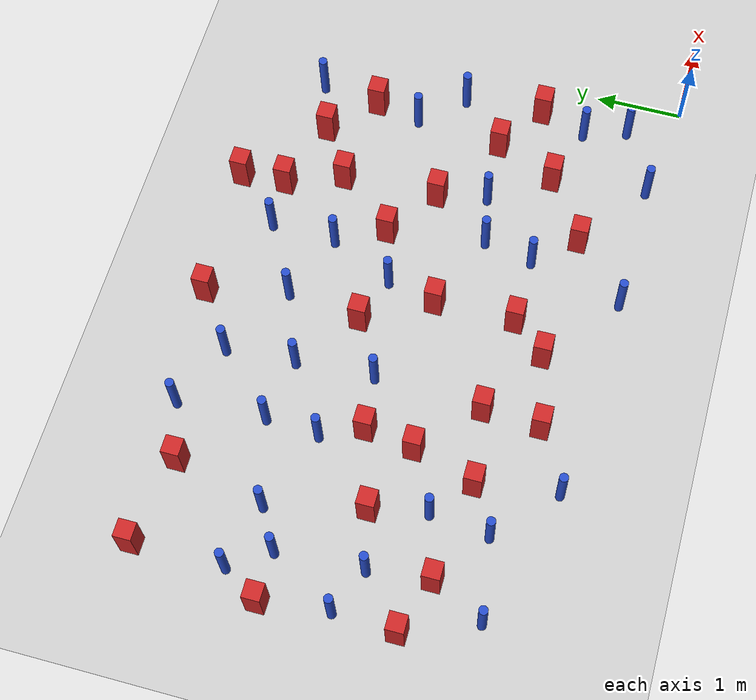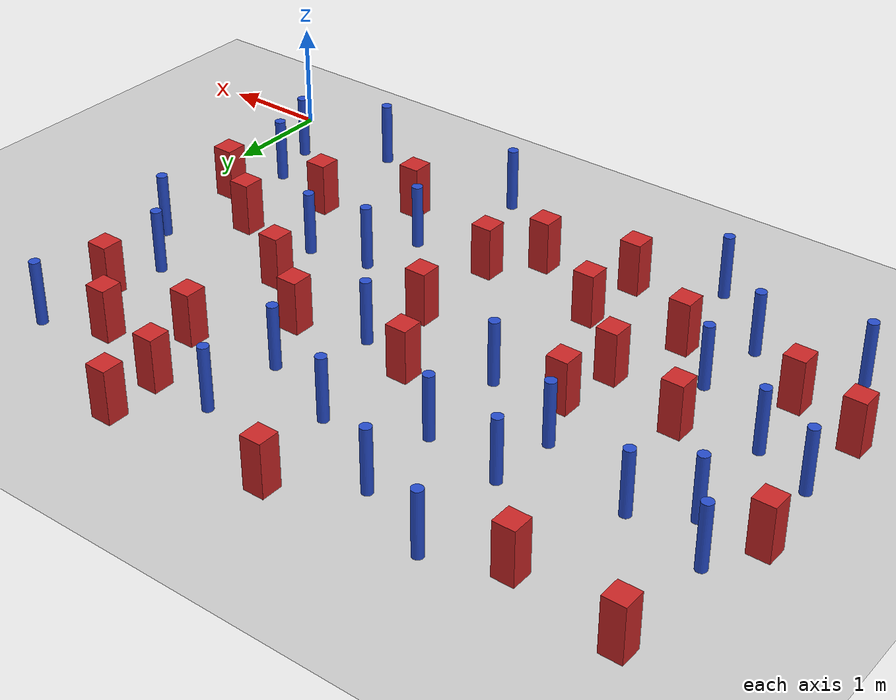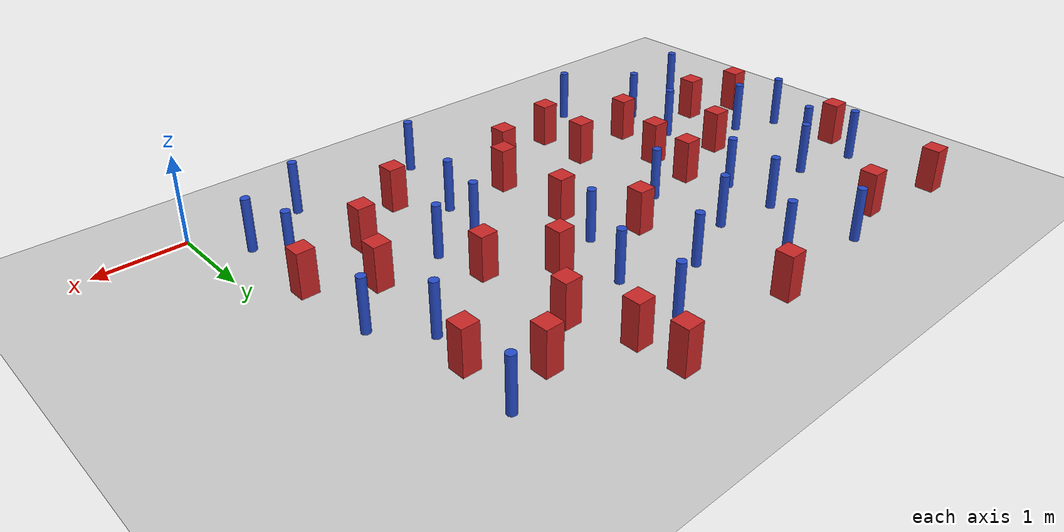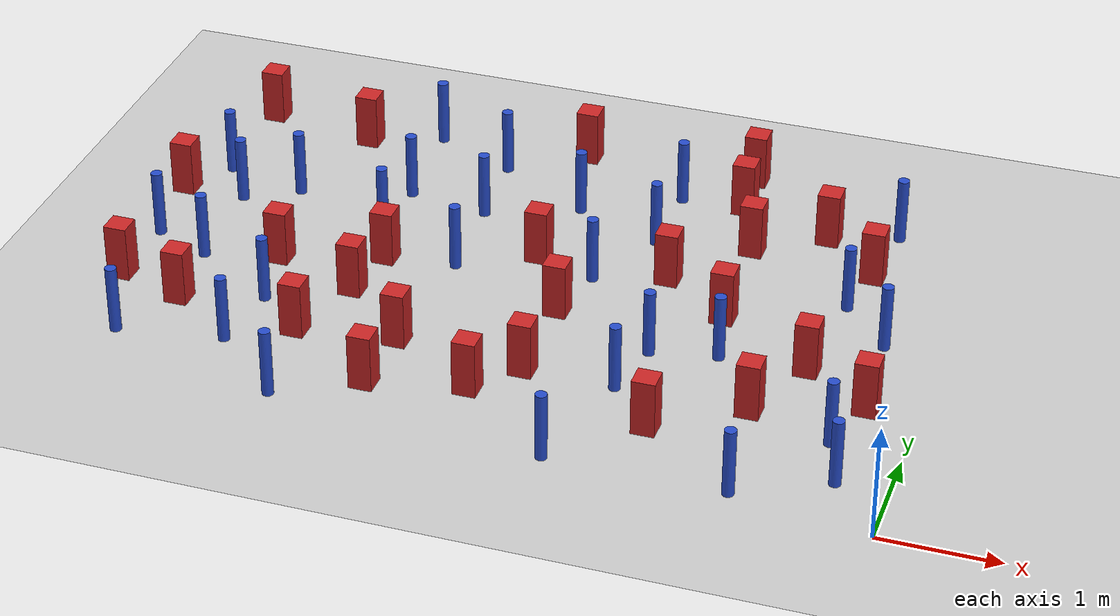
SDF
<sdf version="1.6">
 <world name="default">
  <model name="ground_plane">
   <static>1</static>
   <link name="link">
    <collision name="collision">
     <geometry><plane><normal>0 0 1</normal><size>100 100</size></plane></geometry>
     <surface><friction><ode><mu>100</mu><mu2>50</mu2></ode></friction></surface>
    </collision>
    <visual name="visual">
     <cast_shadows>0</cast_shadows>
     <geometry><plane><normal>0 0 1</normal><size>100 100</size></plane></geometry>
     <material>
      <ambient>1.0 1.0 1.0 1.0</ambient>
      <diffuse>0.8 0.8 0.8 1.0</diffuse>
      <specular>0.01 0.01 0.01 1.000000</specular>
     </material>
    </visual>
   </link>
  </model>
  <model name="square_post_obstacle0">
   <static>true</static>
   <pose>-3.20781454665 2.18599939971 8.22691968438e-08 7.2212513382e-06 -7.54495500217e-07 2.29674213826e-05</pose>
   <link name="link">
    <pose>0 0 0.25 0 -0 0</pose>
    <inertial>
     <mass>100</mass>
     <inertia>
      <ixx>0.166667</ixx>
      <ixy>0</ixy>
      <ixz>0</ixz>
      <iyy>0.166667</iyy>
      <iyz>0</iyz>
      <izz>0.166667</izz>
     </inertia>
    </inertial>
    <collision name="collision"><geometry><box><size>.2 .2 .5</size></box></geometry></collision>
    <visual name="visual">
     <geometry><box><size>.2 .2 .5</size></box></geometry>
     <material>
      <script><name>Gazebo/Red</name><uri>file://media/materials/scripts/gazebo.material</uri></script>
     </material>
    </visual>
   </link>
  </model>
  <model name="pole_obstacle2">
   <static>true</static>
   <pose>-2.73292203256 3.49728590901 2.88873142074e-08 -9.90536690232e-09 4.6021994898e-07 -1.20965994968e-07</pose>
   <link name="link">
    <pose>0 0 0.3 0 -0 0</pose>
    <inertial>
     <mass>1</mass>
     <inertia><ixx>0.145833</ixx><ixy>0</ixy><ixz>0</ixz><iyy>0.145833</iyy><iyz>0</iyz><izz>0.125</izz></inertia>
    </inertial>
    <collision name="collision">
     <geometry><cylinder><radius>0.05</radius><length>.6</length></cylinder></geometry>
    </collision>
    <visual name="visual">
     <geometry><cylinder><radius>0.05</radius><length>.6</length></cylinder></geometry>
     <material>
      <script><name>Gazebo/Blue</name><uri>file://media/materials/scripts/gazebo.material</uri></script>
     </material>
    </visual>
   </link>
  </model>
  <model name="pole_obstacle14">
   <static>true</static>
   <pose>-2.70680773216 4.25169056416 2.88873142074e-08 -9.90536689859e-09 4.60219948989e-07 -1.20965994961e-07</pose>
   <link name="link">
    <pose>0 0 0.3 0 -0 0</pose>
    <inertial>
     <mass>1</mass>
     <inertia><ixx>0.145833</ixx><ixy>0</ixy><ixz>0</ixz><iyy>0.145833</iyy><iyz>0</iyz><izz>0.125</izz></inertia>
    </inertial>
    <collision name="collision">
     <geometry><cylinder><radius>0.05</radius><length>.6</length></cylinder></geometry>
    </collision>
    <visual name="visual">
     <geometry><cylinder><radius>0.05</radius><length>.6</length></cylinder></geometry>
     <material>
      <script><name>Gazebo/Blue</name><uri>file://media/materials/scripts/gazebo.material</uri></script>
     </material>
    </visual>
   </link>
  </model>
  <model name="pole_obstacle15">
   <static>true</static>
   <pose>-0.483504385526 2.51753381008 2.88873142074e-08 -9.90536689335e-09 4.60219949001e-07 -1.20965994953e-07</pose>
   <link name="link">
    <pose>0 0 0.3 0 -0 0</pose>
    <inertial>
     <mass>1</mass>
     <inertia><ixx>0.145833</ixx><ixy>0</ixy><ixz>0</ixz><iyy>0.145833</iyy><iyz>0</iyz><izz>0.125</izz></inertia>
    </inertial>
    <collision name="collision">
     <geometry><cylinder><radius>0.05</radius><length>.6</length></cylinder></geometry>
    </collision>
    <visual name="visual">
     <geometry><cylinder><radius>0.05</radius><length>.6</length></cylinder></geometry>
     <material>
      <script><name>Gazebo/Blue</name><uri>file://media/materials/scripts/gazebo.material</uri></script>
     </material>
    </visual>
   </link>
  </model>
  <model name="pole_obstacle26">
   <static>true</static>
   <pose>-5.02933174492 3.59131452795 2.88873142074e-08 -9.90536690245e-09 4.6021994898e-07 -1.20965994966e-07</pose>
   <link name="link">
    <pose>0 0 0.3 0 -0 0</pose>
    <inertial>
     <mass>1</mass>
     <inertia><ixx>0.145833</ixx><ixy>0</ixy><ixz>0</ixz><iyy>0.145833</iyy><iyz>0</iyz><izz>0.125</izz></inertia>
    </inertial>
    <collision name="collision">
     <geometry><cylinder><radius>0.05</radius><length>.6</length></cylinder></geometry>
    </collision>
    <visual name="visual">
     <geometry><cylinder><radius>0.05</radius><length>.6</length></cylinder></geometry>
     <material>
      <script><name>Gazebo/Blue</name><uri>file://media/materials/scripts/gazebo.material</uri></script>
     </material>
    </visual>
   </link>
  </model>
  <model name="pole_obstacle29">
   <static>true</static>
   <pose>-5.61676912928 1.59975428402 2.88873142074e-08 -9.90536689445e-09 4.60219948999e-07 -1.20965994956e-07</pose>
   <link name="link">
    <pose>0 0 0.3 0 -0 0</pose>
    <inertial>
     <mass>1</mass>
     <inertia><ixx>0.145833</ixx><ixy>0</ixy><ixz>0</ixz><iyy>0.145833</iyy><iyz>0</iyz><izz>0.125</izz></inertia>
    </inertial>
    <collision name="collision">
     <geometry><cylinder><radius>0.05</radius><length>.6</length></cylinder></geometry>
    </collision>
    <visual name="visual">
     <geometry><cylinder><radius>0.05</radius><length>.6</length></cylinder></geometry>
     <material>
      <script><name>Gazebo/Blue</name><uri>file://media/materials/scripts/gazebo.material</uri></script>
     </material>
    </visual>
   </link>
  </model>
  <model name="pole_obstacle34">
   <static>true</static>
   <pose>-2.30116864012 1.83031347452 2.88873142074e-08 -9.90536689395e-09 4.60219949e-07 -1.20965994953e-07</pose>
   <link name="link">
    <pose>0 0 0.3 0 -0 0</pose>
    <inertial>
     <mass>1</mass>
     <inertia><ixx>0.145833</ixx><ixy>0</ixy><ixz>0</ixz><iyy>0.145833</iyy><iyz>0</iyz><izz>0.125</izz></inertia>
    </inertial>
    <collision name="collision">
     <geometry><cylinder><radius>0.05</radius><length>.6</length></cylinder></geometry>
    </collision>
    <visual name="visual">
     <geometry><cylinder><radius>0.05</radius><length>.6</length></cylinder></geometry>
     <material>
      <script><name>Gazebo/Blue</name><uri>file://media/materials/scripts/gazebo.material</uri></script>
     </material>
    </visual>
   </link>
  </model>
  <model name="pole_obstacle37">
   <static>true</static>
   <pose>-2.68491432938 0.179552298153 2.88873142074e-08 -9.90536689209e-09 4.60219949004e-07 -1.20965994952e-07</pose>
   <link name="link">
    <pose>0 0 0.3 0 -0 0</pose>
    <inertial>
     <mass>1</mass>
     <inertia><ixx>0.145833</ixx><ixy>0</ixy><ixz>0</ixz><iyy>0.145833</iyy><iyz>0</iyz><izz>0.125</izz></inertia>
    </inertial>
    <collision name="collision">
     <geometry><cylinder><radius>0.05</radius><length>.6</length></cylinder></geometry>
    </collision>
    <visual name="visual">
     <geometry><cylinder><radius>0.05</radius><length>.6</length></cylinder></geometry>
     <material>
      <script><name>Gazebo/Blue</name><uri>file://media/materials/scripts/gazebo.material</uri></script>
     </material>
    </visual>
   </link>
  </model>
  <model name="pole_obstacle57">
   <static>true</static>
   <pose>-5.0923143408 4.59737089145 2.88873142074e-08 -9.90536690842e-09 4.60219948965e-07 -1.20965994976e-07</pose>
   <link name="link">
    <pose>0 0 0.3 0 -0 0</pose>
    <inertial>
     <mass>1</mass>
     <inertia><ixx>0.145833</ixx><ixy>0</ixy><ixz>0</ixz><iyy>0.145833</iyy><iyz>0</iyz><izz>0.125</izz></inertia>
    </inertial>
    <collision name="collision">
     <geometry><cylinder><radius>0.05</radius><length>.6</length></cylinder></geometry>
    </collision>
    <visual name="visual">
     <geometry><cylinder><radius>0.05</radius><length>.6</length></cylinder></geometry>
     <material>
      <script><name>Gazebo/Blue</name><uri>file://media/materials/scripts/gazebo.material</uri></script>
     </material>
    </visual>
   </link>
  </model>
  <model name="pole_obstacle60">
   <static>true</static>
   <pose>-4.30689478255 3.48012031922 2.88873142074e-08 -9.90536690245e-09 4.6021994898e-07 -1.20965994966e-07</pose>
   <link name="link">
    <pose>0 0 0.3 0 -0 0</pose>
    <inertial>
     <mass>1</mass>
     <inertia><ixx>0.145833</ixx><ixy>0</ixy><ixz>0</ixz><iyy>0.145833</iyy><iyz>0</iyz><izz>0.125</izz></inertia>
    </inertial>
    <collision name="collision">
     <geometry><cylinder><radius>0.05</radius><length>.6</length></cylinder></geometry>
    </collision>
    <visual name="visual">
     <geometry><cylinder><radius>0.05</radius><length>.6</length></cylinder></geometry>
     <material>
      <script><name>Gazebo/Blue</name><uri>file://media/materials/scripts/gazebo.material</uri></script>
     </material>
    </visual>
   </link>
  </model>
  <model name="pole_obstacle68">
   <static>true</static>
   <pose>-4.25882620651 2.58898249832 2.88873142074e-08 -9.90536690245e-09 4.6021994898e-07 -1.20965994966e-07</pose>
   <link name="link">
    <pose>0 0 0.3 0 -0 0</pose>
    <inertial>
     <mass>1</mass>
     <inertia><ixx>0.145833</ixx><ixy>0</ixy><ixz>0</ixz><iyy>0.145833</iyy><iyz>0</iyz><izz>0.125</izz></inertia>
    </inertial>
    <collision name="collision">
     <geometry><cylinder><radius>0.05</radius><length>.6</length></cylinder></geometry>
    </collision>
    <visual name="visual">
     <geometry><cylinder><radius>0.05</radius><length>.6</length></cylinder></geometry>
     <material>
      <script><name>Gazebo/Blue</name><uri>file://media/materials/scripts/gazebo.material</uri></script>
     </material>
    </visual>
   </link>
  </model>
  <model name="square_post_obstacle51">
   <static>true</static>
   <pose>-4.32878848801 1.3493182708 8.22691968438e-08 7.2212513382e-06 -7.54495500217e-07 2.29674213826e-05</pose>
   <link name="link">
    <pose>0 0 0.25 0 -0 0</pose>
    <inertial>
     <mass>100</mass>
     <inertia>
      <ixx>0.166667</ixx>
      <ixy>0</ixy>
      <ixz>0</ixz>
      <iyy>0.166667</iyy>
      <iyz>0</iyz>
      <izz>0.166667</izz>
     </inertia>
    </inertial>
    <collision name="collision"><geometry><box><size>.2 .2 .5</size></box></geometry></collision>
    <visual name="visual">
     <geometry><box><size>.2 .2 .5</size></box></geometry>
     <material>
      <script><name>Gazebo/Red</name><uri>file://media/materials/scripts/gazebo.material</uri></script>
     </material>
    </visual>
   </link>
  </model>
  <model name="square_post_obstacle54">
   <static>true</static>
   <pose>-0.80601503607 3.52082196439 8.22691968438e-08 7.2212513382e-06 -7.54495500217e-07 2.29674213826e-05</pose>
   <link name="link">
    <pose>0 0 0.25 0 -0 0</pose>
    <inertial>
     <mass>100</mass>
     <inertia>
      <ixx>0.166667</ixx>
      <ixy>0</ixy>
      <ixz>0</ixz>
      <iyy>0.166667</iyy>
      <iyz>0</iyz>
      <izz>0.166667</izz>
     </inertia>
    </inertial>
    <collision name="collision"><geometry><box><size>.2 .2 .5</size></box></geometry></collision>
    <visual name="visual">
     <geometry><box><size>.2 .2 .5</size></box></geometry>
     <material>
      <script><name>Gazebo/Red</name><uri>file://media/materials/scripts/gazebo.material</uri></script>
     </material>
    </visual>
   </link>
  </model>
  <model name="square_post_obstacle58">
   <static>true</static>
   <pose>-5.72409586233 4.36190401999 8.22691968438e-08 7.2212513382e-06 -7.54495500217e-07 2.29674213826e-05</pose>
   <link name="link">
    <pose>0 0 0.25 0 -0 0</pose>
    <inertial>
     <mass>100</mass>
     <inertia>
      <ixx>0.166667</ixx>
      <ixy>0</ixy>
      <ixz>0</ixz>
      <iyy>0.166667</iyy>
      <iyz>0</iyz>
      <izz>0.166667</izz>
     </inertia>
    </inertial>
    <collision name="collision"><geometry><box><size>.2 .2 .5</size></box></geometry></collision>
    <visual name="visual">
     <geometry><box><size>.2 .2 .5</size></box></geometry>
     <material>
      <script><name>Gazebo/Red</name><uri>file://media/materials/scripts/gazebo.material</uri></script>
     </material>
    </visual>
   </link>
  </model>
  <model name="pole_obstacle70">
   <static>true</static>
   <pose>-6.72820413691 3.49559906012 2.88873142074e-08 -9.90536690245e-09 4.6021994898e-07 -1.20965994966e-07</pose>
   <link name="link">
    <pose>0 0 0.3 0 -0 0</pose>
    <inertial>
     <mass>1</mass>
     <inertia><ixx>0.145833</ixx><ixy>0</ixy><ixz>0</ixz><iyy>0.145833</iyy><iyz>0</iyz><izz>0.125</izz></inertia>
    </inertial>
    <collision name="collision">
     <geometry><cylinder><radius>0.05</radius><length>.6</length></cylinder></geometry>
    </collision>
    <visual name="visual">
     <geometry><cylinder><radius>0.05</radius><length>.6</length></cylinder></geometry>
     <material>
      <script><name>Gazebo/Blue</name><uri>file://media/materials/scripts/gazebo.material</uri></script>
     </material>
    </visual>
   </link>
  </model>
  <model name="square_post_obstacle59">
   <static>true</static>
   <pose>-4.36329872787 0.689476009944 8.22691968438e-08 7.2212513382e-06 -7.54495500217e-07 2.29674213826e-05</pose>
   <link name="link">
    <pose>0 0 0.25 0 -0 0</pose>
    <inertial>
     <mass>100</mass>
     <inertia>
      <ixx>0.166667</ixx>
      <ixy>0</ixy>
      <ixz>0</ixz>
      <iyy>0.166667</iyy>
      <iyz>0</iyz>
      <izz>0.166667</izz>
     </inertia>
    </inertial>
    <collision name="collision"><geometry><box><size>.2 .2 .5</size></box></geometry></collision>
    <visual name="visual">
     <geometry><box><size>.2 .2 .5</size></box></geometry>
     <material>
      <script><name>Gazebo/Red</name><uri>file://media/materials/scripts/gazebo.material</uri></script>
     </material>
    </visual>
   </link>
  </model>
  <model name="square_post_obstacle60">
   <static>true</static>
   <pose>-6.30531242567 1.37823573776 8.22691968438e-08 7.2212513382e-06 -7.54495500217e-07 2.29674213826e-05</pose>
   <link name="link">
    <pose>0 0 0.25 0 -0 0</pose>
    <inertial>
     <mass>100</mass>
     <inertia>
      <ixx>0.166667</ixx>
      <ixy>0</ixy>
      <ixz>0</ixz>
      <iyy>0.166667</iyy>
      <iyz>0</iyz>
      <izz>0.166667</izz>
     </inertia>
    </inertial>
    <collision name="collision"><geometry><box><size>.2 .2 .5</size></box></geometry></collision>
    <visual name="visual">
     <geometry><box><size>.2 .2 .5</size></box></geometry>
     <material>
      <script><name>Gazebo/Red</name><uri>file://media/materials/scripts/gazebo.material</uri></script>
     </material>
    </visual>
   </link>
  </model>
  <model name="pole_obstacle72">
   <static>true</static>
   <pose>-1.17680404459 0.184795496325 2.88873142074e-08 -9.90536689986e-09 4.60219948986e-07 -1.20965994962e-07</pose>
   <link name="link">
    <pose>0 0 0.3 0 -0 0</pose>
    <inertial>
     <mass>1</mass>
     <inertia><ixx>0.145833</ixx><ixy>0</ixy><ixz>0</ixz><iyy>0.145833</iyy><iyz>0</iyz><izz>0.125</izz></inertia>
    </inertial>
    <collision name="collision">
     <geometry><cylinder><radius>0.05</radius><length>.6</length></cylinder></geometry>
    </collision>
    <visual name="visual">
     <geometry><cylinder><radius>0.05</radius><length>.6</length></cylinder></geometry>
     <material>
      <script><name>Gazebo/Blue</name><uri>file://media/materials/scripts/gazebo.material</uri></script>
     </material>
    </visual>
   </link>
  </model>
  <model name="pole_obstacle78">
   <static>true</static>
   <pose>-3.51299128004 3.80037510205 2.88873142074e-08 -9.90536690232e-09 4.6021994898e-07 -1.20965994968e-07</pose>
   <link name="link">
    <pose>0 0 0.3 0 -0 0</pose>
    <inertial>
     <mass>1</mass>
     <inertia><ixx>0.145833</ixx><ixy>0</ixy><ixz>0</ixz><iyy>0.145833</iyy><iyz>0</iyz><izz>0.125</izz></inertia>
    </inertial>
    <collision name="collision">
     <geometry><cylinder><radius>0.05</radius><length>.6</length></cylinder></geometry>
    </collision>
    <visual name="visual">
     <geometry><cylinder><radius>0.05</radius><length>.6</length></cylinder></geometry>
     <material>
      <script><name>Gazebo/Blue</name><uri>file://media/materials/scripts/gazebo.material</uri></script>
     </material>
    </visual>
   </link>
  </model>
  <model name="square_post_obstacle73">
   <static>true</static>
   <pose>-3.5390618023 0.868748552133 8.22691968438e-08 7.2212513382e-06 -7.54495500217e-07 2.29674213826e-05</pose>
   <link name="link">
    <pose>0 0 0.25 0 -0 0</pose>
    <inertial>
     <mass>100</mass>
     <inertia>
      <ixx>0.166667</ixx>
      <ixy>0</ixy>
      <ixz>0</ixz>
      <iyy>0.166667</iyy>
      <iyz>0</iyz>
      <izz>0.166667</izz>
     </inertia>
    </inertial>
    <collision name="collision"><geometry><box><size>.2 .2 .5</size></box></geometry></collision>
    <visual name="visual">
     <geometry><box><size>.2 .2 .5</size></box></geometry>
     <material>
      <script><name>Gazebo/Red</name><uri>file://media/materials/scripts/gazebo.material</uri></script>
     </material>
    </visual>
   </link>
  </model>
  <model name="square_post_obstacle75">
   <static>true</static>
   <pose>-0.421297651456 1.59461641238 8.22691968438e-08 7.2212513382e-06 -7.54495500217e-07 2.29674213826e-05</pose>
   <link name="link">
    <pose>0 0 0.25 0 -0 0</pose>
    <inertial>
     <mass>100</mass>
     <inertia>
      <ixx>0.166667</ixx>
      <ixy>0</ixy>
      <ixz>0</ixz>
      <iyy>0.166667</iyy>
      <iyz>0</iyz>
      <izz>0.166667</izz>
     </inertia>
    </inertial>
    <collision name="collision"><geometry><box><size>.2 .2 .5</size></box></geometry></collision>
    <visual name="visual">
     <geometry><box><size>.2 .2 .5</size></box></geometry>
     <material>
      <script><name>Gazebo/Red</name><uri>file://media/materials/scripts/gazebo.material</uri></script>
     </material>
    </visual>
   </link>
  </model>
  <model name="pole_obstacle98">
   <static>true</static>
   <pose>-6.43764757645 3.0581776882 2.88873142074e-08 -9.90536690245e-09 4.6021994898e-07 -1.20965994966e-07</pose>
   <link name="link">
    <pose>0 0 0.3 0 -0 0</pose>
    <inertial>
     <mass>1</mass>
     <inertia><ixx>0.145833</ixx><ixy>0</ixy><ixz>0</ixz><iyy>0.145833</iyy><iyz>0</iyz><izz>0.125</izz></inertia>
    </inertial>
    <collision name="collision">
     <geometry><cylinder><radius>0.05</radius><length>.6</length></cylinder></geometry>
    </collision>
    <visual name="visual">
     <geometry><cylinder><radius>0.05</radius><length>.6</length></cylinder></geometry>
     <material>
      <script><name>Gazebo/Blue</name><uri>file://media/materials/scripts/gazebo.material</uri></script>
     </material>
    </visual>
   </link>
  </model>
  <model name="pole_obstacle100">
   <static>true</static>
   <pose>-0.907342043116 3.00085684457 2.88873142074e-08 -9.90536689636e-09 4.60219948994e-07 -1.20965994958e-07</pose>
   <link name="link">
    <pose>0 0 0.3 0 -0 0</pose>
    <inertial>
     <mass>1</mass>
     <inertia><ixx>0.145833</ixx><ixy>0</ixy><ixz>0</ixz><iyy>0.145833</iyy><iyz>0</iyz><izz>0.125</izz></inertia>
    </inertial>
    <collision name="collision">
     <geometry><cylinder><radius>0.05</radius><length>.6</length></cylinder></geometry>
    </collision>
    <visual name="visual">
     <geometry><cylinder><radius>0.05</radius><length>.6</length></cylinder></geometry>
     <material>
      <script><name>Gazebo/Blue</name><uri>file://media/materials/scripts/gazebo.material</uri></script>
     </material>
    </visual>
   </link>
  </model>
  <model name="square_post_obstacle92">
   <static>true</static>
   <pose>-1.30807589757 4.00174248024 8.22691968438e-08 7.22125133819e-06 -7.54495500217e-07 2.29674213826e-05</pose>
   <link name="link">
    <pose>0 0 0.25 0 -0 0</pose>
    <inertial>
     <mass>100</mass>
     <inertia>
      <ixx>0.166667</ixx>
      <ixy>0</ixy>
      <ixz>0</ixz>
      <iyy>0.166667</iyy>
      <iyz>0</iyz>
      <izz>0.166667</izz>
     </inertia>
    </inertial>
    <collision name="collision"><geometry><box><size>.2 .2 .5</size></box></geometry></collision>
    <visual name="visual">
     <geometry><box><size>.2 .2 .5</size></box></geometry>
     <material>
      <script><name>Gazebo/Red</name><uri>file://media/materials/scripts/gazebo.material</uri></script>
     </material>
    </visual>
   </link>
  </model>
  <model name="pole_obstacle103">
   <static>true</static>
   <pose>-5.69747602138 0.925611544059 2.88873142074e-08 -9.90536689837e-09 4.60219948989e-07 -1.2096599496e-07</pose>
   <link name="link">
    <pose>0 0 0.3 0 -0 0</pose>
    <inertial>
     <mass>1</mass>
     <inertia><ixx>0.145833</ixx><ixy>0</ixy><ixz>0</ixz><iyy>0.145833</iyy><iyz>0</iyz><izz>0.125</izz></inertia>
    </inertial>
    <collision name="collision">
     <geometry><cylinder><radius>0.05</radius><length>.6</length></cylinder></geometry>
    </collision>
    <visual name="visual">
     <geometry><cylinder><radius>0.05</radius><length>.6</length></cylinder></geometry>
     <material>
      <script><name>Gazebo/Blue</name><uri>file://media/materials/scripts/gazebo.material</uri></script>
     </material>
    </visual>
   </link>
  </model>
  <model name="square_post_obstacle98">
   <static>true</static>
   <pose>-2.13656163109 4.26552883706 8.22691968438e-08 7.2212513382e-06 -7.54495500217e-07 2.29674213826e-05</pose>
   <link name="link">
    <pose>0 0 0.25 0 -0 0</pose>
    <inertial>
     <mass>100</mass>
     <inertia>
      <ixx>0.166667</ixx>
      <ixy>0</ixy>
      <ixz>0</ixz>
      <iyy>0.166667</iyy>
      <iyz>0</iyz>
      <izz>0.166667</izz>
     </inertia>
    </inertial>
    <collision name="collision"><geometry><box><size>.2 .2 .5</size></box></geometry></collision>
    <visual name="visual">
     <geometry><box><size>.2 .2 .5</size></box></geometry>
     <material>
      <script><name>Gazebo/Red</name><uri>file://media/materials/scripts/gazebo.material</uri></script>
     </material>
    </visual>
   </link>
  </model>
  <model name="square_post_obstacle105">
   <static>true</static>
   <pose>-1.85438892987 2.51725558635 8.22691968438e-08 7.2212513382e-06 -7.54495500217e-07 2.29674213826e-05</pose>
   <link name="link">
    <pose>0 0 0.25 0 -0 0</pose>
    <inertial>
     <mass>100</mass>
     <inertia>
      <ixx>0.166667</ixx>
      <ixy>0</ixy>
      <ixz>0</ixz>
      <iyy>0.166667</iyy>
      <iyz>0</iyz>
      <izz>0.166667</izz>
     </inertia>
    </inertial>
    <collision name="collision"><geometry><box><size>.2 .2 .5</size></box></geometry></collision>
    <visual name="visual">
     <geometry><box><size>.2 .2 .5</size></box></geometry>
     <material>
      <script><name>Gazebo/Red</name><uri>file://media/materials/scripts/gazebo.material</uri></script>
     </material>
    </visual>
   </link>
  </model>
  <model name="square_post_obstacle108">
   <static>true</static>
   <pose>-5.736907735 2.23303035047 8.22691968438e-08 7.2212513382e-06 -7.54495500217e-07 2.29674213826e-05</pose>
   <link name="link">
    <pose>0 0 0.25 0 -0 0</pose>
    <inertial>
     <mass>100</mass>
     <inertia>
      <ixx>0.166667</ixx>
      <ixy>0</ixy>
      <ixz>0</ixz>
      <iyy>0.166667</iyy>
      <iyz>0</iyz>
      <izz>0.166667</izz>
     </inertia>
    </inertial>
    <collision name="collision"><geometry><box><size>.2 .2 .5</size></box></geometry></collision>
    <visual name="visual">
     <geometry><box><size>.2 .2 .5</size></box></geometry>
     <material>
      <script><name>Gazebo/Red</name><uri>file://media/materials/scripts/gazebo.material</uri></script>
     </material>
    </visual>
   </link>
  </model>
  <model name="square_post_obstacle109">
   <static>true</static>
   <pose>-2.45861375442 2.94761041539 8.22691968438e-08 7.2212513382e-06 -7.54495500217e-07 2.29674213826e-05</pose>
   <link name="link">
    <pose>0 0 0.25 0 -0 0</pose>
    <inertial>
     <mass>100</mass>
     <inertia>
      <ixx>0.166667</ixx>
      <ixy>0</ixy>
      <ixz>0</ixz>
      <iyy>0.166667</iyy>
      <iyz>0</iyz>
      <izz>0.166667</izz>
     </inertia>
    </inertial>
    <collision name="collision"><geometry><box><size>.2 .2 .5</size></box></geometry></collision>
    <visual name="visual">
     <geometry><box><size>.2 .2 .5</size></box></geometry>
     <material>
      <script><name>Gazebo/Red</name><uri>file://media/materials/scripts/gazebo.material</uri></script>
     </material>
    </visual>
   </link>
  </model>
  <model name="square_post_obstacle114">
   <static>true</static>
   <pose>-3.19970918607 1.26109049599 8.22691968438e-08 7.22125133819e-06 -7.54495500217e-07 2.29674213826e-05</pose>
   <link name="link">
    <pose>0 0 0.25 0 -0 0</pose>
    <inertial>
     <mass>100</mass>
     <inertia>
      <ixx>0.166667</ixx>
      <ixy>0</ixy>
      <ixz>0</ixz>
      <iyy>0.166667</iyy>
      <iyz>0</iyz>
      <izz>0.166667</izz>
     </inertia>
    </inertial>
    <collision name="collision"><geometry><box><size>.2 .2 .5</size></box></geometry></collision>
    <visual name="visual">
     <geometry><box><size>.2 .2 .5</size></box></geometry>
     <material>
      <script><name>Gazebo/Red</name><uri>file://media/materials/scripts/gazebo.material</uri></script>
     </material>
    </visual>
   </link>
  </model>
  <model name="pole_obstacle119">
   <static>true</static>
   <pose>-0.725809451937 4.21421105818 2.88873142074e-08 -9.90536689661e-09 4.60219948993e-07 -1.20965994957e-07</pose>
   <link name="link">
    <pose>0 0 0.3 0 -0 0</pose>
    <inertial>
     <mass>1</mass>
     <inertia><ixx>0.145833</ixx><ixy>0</ixy><ixz>0</ixz><iyy>0.145833</iyy><iyz>0</iyz><izz>0.125</izz></inertia>
    </inertial>
    <collision name="collision">
     <geometry><cylinder><radius>0.05</radius><length>.6</length></cylinder></geometry>
    </collision>
    <visual name="visual">
     <geometry><cylinder><radius>0.05</radius><length>.6</length></cylinder></geometry>
     <material>
      <script><name>Gazebo/Blue</name><uri>file://media/materials/scripts/gazebo.material</uri></script>
     </material>
    </visual>
   </link>
  </model>
  <model name="pole_obstacle127">
   <static>true</static>
   <pose>-6.6108698611 0.775485537895 2.88873142074e-08 -9.90536689837e-09 4.60219948989e-07 -1.2096599496e-07</pose>
   <link name="link">
    <pose>0 0 0.3 0 -0 0</pose>
    <inertial>
     <mass>1</mass>
     <inertia><ixx>0.145833</ixx><ixy>0</ixy><ixz>0</ixz><iyy>0.145833</iyy><iyz>0</iyz><izz>0.125</izz></inertia>
    </inertial>
    <collision name="collision">
     <geometry><cylinder><radius>0.05</radius><length>.6</length></cylinder></geometry>
    </collision>
    <visual name="visual">
     <geometry><cylinder><radius>0.05</radius><length>.6</length></cylinder></geometry>
     <material>
      <script><name>Gazebo/Blue</name><uri>file://media/materials/scripts/gazebo.material</uri></script>
     </material>
    </visual>
   </link>
  </model>
  <model name="square_post_obstacle123">
   <static>true</static>
   <pose>-3.71665706565 4.71311001846 8.22691968438e-08 7.2212513382e-06 -7.54495500217e-07 2.29674213826e-05</pose>
   <link name="link">
    <pose>0 0 0.25 0 -0 0</pose>
    <inertial>
     <mass>100</mass>
     <inertia>
      <ixx>0.166667</ixx>
      <ixy>0</ixy>
      <ixz>0</ixz>
      <iyy>0.166667</iyy>
      <iyz>0</iyz>
      <izz>0.166667</izz>
     </inertia>
    </inertial>
    <collision name="collision"><geometry><box><size>.2 .2 .5</size></box></geometry></collision>
    <visual name="visual">
     <geometry><box><size>.2 .2 .5</size></box></geometry>
     <material>
      <script><name>Gazebo/Red</name><uri>file://media/materials/scripts/gazebo.material</uri></script>
     </material>
    </visual>
   </link>
  </model>
  <model name="pole_obstacle128">
   <static>true</static>
   <pose>-3.07985576159 2.75883447984 2.88873142074e-08 -9.90536690232e-09 4.6021994898e-07 -1.20965994968e-07</pose>
   <link name="link">
    <pose>0 0 0.3 0 -0 0</pose>
    <inertial>
     <mass>1</mass>
     <inertia><ixx>0.145833</ixx><ixy>0</ixy><ixz>0</ixz><iyy>0.145833</iyy><iyz>0</iyz><izz>0.125</izz></inertia>
    </inertial>
    <collision name="collision">
     <geometry><cylinder><radius>0.05</radius><length>.6</length></cylinder></geometry>
    </collision>
    <visual name="visual">
     <geometry><cylinder><radius>0.05</radius><length>.6</length></cylinder></geometry>
     <material>
      <script><name>Gazebo/Blue</name><uri>file://media/materials/scripts/gazebo.material</uri></script>
     </material>
    </visual>
   </link>
  </model>
  <model name="pole_obstacle133">
   <static>true</static>
   <pose>-0.589688553463 1.06342430037 2.88873142074e-08 -9.90536689855e-09 4.60219948989e-07 -1.20965994962e-07</pose>
   <link name="link">
    <pose>0 0 0.3 0 -0 0</pose>
    <inertial>
     <mass>1</mass>
     <inertia><ixx>0.145833</ixx><ixy>0</ixy><ixz>0</ixz><iyy>0.145833</iyy><iyz>0</iyz><izz>0.125</izz></inertia>
    </inertial>
    <collision name="collision">
     <geometry><cylinder><radius>0.05</radius><length>.6</length></cylinder></geometry>
    </collision>
    <visual name="visual">
     <geometry><cylinder><radius>0.05</radius><length>.6</length></cylinder></geometry>
     <material>
      <script><name>Gazebo/Blue</name><uri>file://media/materials/scripts/gazebo.material</uri></script>
     </material>
    </visual>
   </link>
  </model>
  <model name="square_post_obstacle138">
   <static>true</static>
   <pose>-4.95675530133 1.94909734934 8.22691968438e-08 7.2212513382e-06 -7.54495500217e-07 2.29674213826e-05</pose>
   <link name="link">
    <pose>0 0 0.25 0 -0 0</pose>
    <inertial>
     <mass>100</mass>
     <inertia>
      <ixx>0.166667</ixx>
      <ixy>0</ixy>
      <ixz>0</ixz>
      <iyy>0.166667</iyy>
      <iyz>0</iyz>
      <izz>0.166667</izz>
     </inertia>
    </inertial>
    <collision name="collision"><geometry><box><size>.2 .2 .5</size></box></geometry></collision>
    <visual name="visual">
     <geometry><box><size>.2 .2 .5</size></box></geometry>
     <material>
      <script><name>Gazebo/Red</name><uri>file://media/materials/scripts/gazebo.material</uri></script>
     </material>
    </visual>
   </link>
  </model>
  <model name="pole_obstacle146">
   <static>true</static>
   <pose>-5.07546914162 2.98411276494 2.88873142074e-08 -9.90536690245e-09 4.6021994898e-07 -1.20965994966e-07</pose>
   <link name="link">
    <pose>0 0 0.3 0 -0 0</pose>
    <inertial>
     <mass>1</mass>
     <inertia><ixx>0.145833</ixx><ixy>0</ixy><ixz>0</ixz><iyy>0.145833</iyy><iyz>0</iyz><izz>0.125</izz></inertia>
    </inertial>
    <collision name="collision">
     <geometry><cylinder><radius>0.05</radius><length>.6</length></cylinder></geometry>
    </collision>
    <visual name="visual">
     <geometry><cylinder><radius>0.05</radius><length>.6</length></cylinder></geometry>
     <material>
      <script><name>Gazebo/Blue</name><uri>file://media/materials/scripts/gazebo.material</uri></script>
     </material>
    </visual>
   </link>
  </model>
  <model name="square_post_obstacle143">
   <static>true</static>
   <pose>-6.71862336254 4.52796603733 8.22691968438e-08 7.2212513382e-06 -7.54495500217e-07 2.29674213826e-05</pose>
   <link name="link">
    <pose>0 0 0.25 0 -0 0</pose>
    <inertial>
     <mass>100</mass>
     <inertia>
      <ixx>0.166667</ixx>
      <ixy>0</ixy>
      <ixz>0</ixz>
      <iyy>0.166667</iyy>
      <iyz>0</iyz>
      <izz>0.166667</izz>
     </inertia>
    </inertial>
    <collision name="collision"><geometry><box><size>.2 .2 .5</size></box></geometry></collision>
    <visual name="visual">
     <geometry><box><size>.2 .2 .5</size></box></geometry>
     <material>
      <script><name>Gazebo/Red</name><uri>file://media/materials/scripts/gazebo.material</uri></script>
     </material>
    </visual>
   </link>
  </model>
  <model name="square_post_obstacle147">
   <static>true</static>
   <pose>-2.16358443132 4.78139373979 8.22691968438e-08 7.2212513382e-06 -7.54495500217e-07 2.29674213826e-05</pose>
   <link name="link">
    <pose>0 0 0.25 0 -0 0</pose>
    <inertial>
     <mass>100</mass>
     <inertia>
      <ixx>0.166667</ixx>
      <ixy>0</ixy>
      <ixz>0</ixz>
      <iyy>0.166667</iyy>
      <iyz>0</iyz>
      <izz>0.166667</izz>
     </inertia>
    </inertial>
    <collision name="collision"><geometry><box><size>.2 .2 .5</size></box></geometry></collision>
    <visual name="visual">
     <geometry><box><size>.2 .2 .5</size></box></geometry>
     <material>
      <script><name>Gazebo/Red</name><uri>file://media/materials/scripts/gazebo.material</uri></script>
     </material>
    </visual>
   </link>
  </model>
  <model name="square_post_obstacle156">
   <static>true</static>
   <pose>-1.3022013157 1.2790174871 8.22691968438e-08 7.2212513382e-06 -7.54495500217e-07 2.29674213826e-05</pose>
   <link name="link">
    <pose>0 0 0.25 0 -0 0</pose>
    <inertial>
     <mass>100</mass>
     <inertia>
      <ixx>0.166667</ixx>
      <ixy>0</ixy>
      <ixz>0</ixz>
      <iyy>0.166667</iyy>
      <iyz>0</iyz>
      <izz>0.166667</izz>
     </inertia>
    </inertial>
    <collision name="collision"><geometry><box><size>.2 .2 .5</size></box></geometry></collision>
    <visual name="visual">
     <geometry><box><size>.2 .2 .5</size></box></geometry>
     <material>
      <script><name>Gazebo/Red</name><uri>file://media/materials/scripts/gazebo.material</uri></script>
     </material>
    </visual>
   </link>
  </model>
  <model name="pole_obstacle166">
   <static>true</static>
   <pose>-6.38347037262 2.07661071237 2.88873142074e-08 -9.90536690245e-09 4.6021994898e-07 -1.20965994966e-07</pose>
   <link name="link">
    <pose>0 0 0.3 0 -0 0</pose>
    <inertial>
     <mass>1</mass>
     <inertia><ixx>0.145833</ixx><ixy>0</ixy><ixz>0</ixz><iyy>0.145833</iyy><iyz>0</iyz><izz>0.125</izz></inertia>
    </inertial>
    <collision name="collision">
     <geometry><cylinder><radius>0.05</radius><length>.6</length></cylinder></geometry>
    </collision>
    <visual name="visual">
     <geometry><cylinder><radius>0.05</radius><length>.6</length></cylinder></geometry>
     <material>
      <script><name>Gazebo/Blue</name><uri>file://media/materials/scripts/gazebo.material</uri></script>
     </material>
    </visual>
   </link>
  </model>
  <model name="square_post_obstacle174">
   <static>true</static>
   <pose>-3.62013616205 2.94229446803 8.22691968438e-08 7.2212513382e-06 -7.54495500217e-07 2.29674213826e-05</pose>
   <link name="link">
    <pose>0 0 0.25 0 -0 0</pose>
    <inertial>
     <mass>100</mass>
     <inertia>
      <ixx>0.166667</ixx>
      <ixy>0</ixy>
      <ixz>0</ixz>
      <iyy>0.166667</iyy>
      <iyz>0</iyz>
      <izz>0.166667</izz>
     </inertia>
    </inertial>
    <collision name="collision"><geometry><box><size>.2 .2 .5</size></box></geometry></collision>
    <visual name="visual">
     <geometry><box><size>.2 .2 .5</size></box></geometry>
     <material>
      <script><name>Gazebo/Red</name><uri>file://media/materials/scripts/gazebo.material</uri></script>
     </material>
    </visual>
   </link>
  </model>
  <model name="square_post_obstacle176">
   <static>true</static>
   <pose>-1.00235854007 1.98320811394 8.22691968438e-08 7.22125133819e-06 -7.54495500217e-07 2.29674213826e-05</pose>
   <link name="link">
    <pose>0 0 0.25 0 -0 0</pose>
    <inertial>
     <mass>100</mass>
     <inertia>
      <ixx>0.166667</ixx>
      <ixy>0</ixy>
      <ixz>0</ixz>
      <iyy>0.166667</iyy>
      <iyz>0</iyz>
      <izz>0.166667</izz>
     </inertia>
    </inertial>
    <collision name="collision"><geometry><box><size>.2 .2 .5</size></box></geometry></collision>
    <visual name="visual">
     <geometry><box><size>.2 .2 .5</size></box></geometry>
     <material>
      <script><name>Gazebo/Red</name><uri>file://media/materials/scripts/gazebo.material</uri></script>
     </material>
    </visual>
   </link>
  </model>
  <model name="pole_obstacle180">
   <static>true</static>
   <pose>-0.429030085352 0.564830417211 2.88873142074e-08 -9.9053668986e-09 4.60219948989e-07 -1.20965994961e-07</pose>
   <link name="link">
    <pose>0 0 0.3 0 -0 0</pose>
    <inertial>
     <mass>1</mass>
     <inertia><ixx>0.145833</ixx><ixy>0</ixy><ixz>0</ixz><iyy>0.145833</iyy><iyz>0</iyz><izz>0.125</izz></inertia>
    </inertial>
    <collision name="collision">
     <geometry><cylinder><radius>0.05</radius><length>.6</length></cylinder></geometry>
    </collision>
    <visual name="visual">
     <geometry><cylinder><radius>0.05</radius><length>.6</length></cylinder></geometry>
     <material>
      <script><name>Gazebo/Blue</name><uri>file://media/materials/scripts/gazebo.material</uri></script>
     </material>
    </visual>
   </link>
  </model>
  <model name="square_post_obstacle182">
   <static>true</static>
   <pose>-2.02002918949 0.801723323046 8.22691968438e-08 7.2212513382e-06 -7.54495500217e-07 2.29674213826e-05</pose>
   <link name="link">
    <pose>0 0 0.25 0 -0 0</pose>
    <inertial>
     <mass>100</mass>
     <inertia>
      <ixx>0.166667</ixx>
      <ixy>0</ixy>
      <ixz>0</ixz>
      <iyy>0.166667</iyy>
      <iyz>0</iyz>
      <izz>0.166667</izz>
     </inertia>
    </inertial>
    <collision name="collision"><geometry><box><size>.2 .2 .5</size></box></geometry></collision>
    <visual name="visual">
     <geometry><box><size>.2 .2 .5</size></box></geometry>
     <material>
      <script><name>Gazebo/Red</name><uri>file://media/materials/scripts/gazebo.material</uri></script>
     </material>
    </visual>
   </link>
  </model>
  <model name="pole_obstacle183">
   <static>true</static>
   <pose>-5.04801754741 0.31465747134 2.88873142074e-08 -9.90536689981e-09 4.60219948986e-07 -1.20965994962e-07</pose>
   <link name="link">
    <pose>0 0 0.3 0 -0 0</pose>
    <inertial>
     <mass>1</mass>
     <inertia><ixx>0.145833</ixx><ixy>0</ixy><ixz>0</ixz><iyy>0.145833</iyy><iyz>0</iyz><izz>0.125</izz></inertia>
    </inertial>
    <collision name="collision">
     <geometry><cylinder><radius>0.05</radius><length>.6</length></cylinder></geometry>
    </collision>
    <visual name="visual">
     <geometry><cylinder><radius>0.05</radius><length>.6</length></cylinder></geometry>
     <material>
      <script><name>Gazebo/Blue</name><uri>file://media/materials/scripts/gazebo.material</uri></script>
     </material>
    </visual>
   </link>
  </model>
  <model name="square_post_obstacle186">
   <static>true</static>
   <pose>-5.184143916 1.22664276586 8.22691968438e-08 7.2212513382e-06 -7.54495500217e-07 2.29674213826e-05</pose>
   <link name="link">
    <pose>0 0 0.25 0 -0 0</pose>
    <inertial>
     <mass>100</mass>
     <inertia>
      <ixx>0.166667</ixx>
      <ixy>0</ixy>
      <ixz>0</ixz>
      <iyy>0.166667</iyy>
      <iyz>0</iyz>
      <izz>0.166667</izz>
     </inertia>
    </inertial>
    <collision name="collision"><geometry><box><size>.2 .2 .5</size></box></geometry></collision>
    <visual name="visual">
     <geometry><box><size>.2 .2 .5</size></box></geometry>
     <material>
      <script><name>Gazebo/Red</name><uri>file://media/materials/scripts/gazebo.material</uri></script>
     </material>
    </visual>
   </link>
  </model>
  <model name="pole_obstacle186">
   <static>true</static>
   <pose>-2.41857350396 1.2611414964 2.88873142074e-08 -9.90536689395e-09 4.60219949e-07 -1.20965994953e-07</pose>
   <link name="link">
    <pose>0 0 0.3 0 -0 0</pose>
    <inertial>
     <mass>1</mass>
     <inertia><ixx>0.145833</ixx><ixy>0</ixy><ixz>0</ixz><iyy>0.145833</iyy><iyz>0</iyz><izz>0.125</izz></inertia>
    </inertial>
    <collision name="collision">
     <geometry><cylinder><radius>0.05</radius><length>.6</length></cylinder></geometry>
    </collision>
    <visual name="visual">
     <geometry><cylinder><radius>0.05</radius><length>.6</length></cylinder></geometry>
     <material>
      <script><name>Gazebo/Blue</name><uri>file://media/materials/scripts/gazebo.material</uri></script>
     </material>
    </visual>
   </link>
  </model>
  <model name="square_post_obstacle191">
   <static>true</static>
   <pose>-4.8717413797 2.51260036744 8.22691968438e-08 7.2212513382e-06 -7.54495500217e-07 2.29674213826e-05</pose>
   <link name="link">
    <pose>0 0 0.25 0 -0 0</pose>
    <inertial>
     <mass>100</mass>
     <inertia>
      <ixx>0.166667</ixx>
      <ixy>0</ixy>
      <ixz>0</ixz>
      <iyy>0.166667</iyy>
      <iyz>0</iyz>
      <izz>0.166667</izz>
     </inertia>
    </inertial>
    <collision name="collision"><geometry><box><size>.2 .2 .5</size></box></geometry></collision>
    <visual name="visual">
     <geometry><box><size>.2 .2 .5</size></box></geometry>
     <material>
      <script><name>Gazebo/Red</name><uri>file://media/materials/scripts/gazebo.material</uri></script>
     </material>
    </visual>
   </link>
  </model>
  <model name="square_post_obstacle197">
   <static>true</static>
   <pose>-6.98478495859 3.06513257583 8.22691968438e-08 7.2212513382e-06 -7.54495500217e-07 2.29674213826e-05</pose>
   <link name="link">
    <pose>0 0 0.25 0 -0 0</pose>
    <inertial>
     <mass>100</mass>
     <inertia>
      <ixx>0.166667</ixx>
      <ixy>0</ixy>
      <ixz>0</ixz>
      <iyy>0.166667</iyy>
      <iyz>0</iyz>
      <izz>0.166667</izz>
     </inertia>
    </inertial>
    <collision name="collision"><geometry><box><size>.2 .2 .5</size></box></geometry></collision>
    <visual name="visual">
     <geometry><box><size>.2 .2 .5</size></box></geometry>
     <material>
      <script><name>Gazebo/Red</name><uri>file://media/materials/scripts/gazebo.material</uri></script>
     </material>
    </visual>
   </link>
  </model>
  <model name="square_post_obstacle199">
   <static>true</static>
   <pose>-1.8961464261 3.61996227297 8.22691968438e-08 7.2212513382e-06 -7.54495500217e-07 2.29674213826e-05</pose>
   <link name="link">
    <pose>0 0 0.25 0 -0 0</pose>
    <inertial>
     <mass>100</mass>
     <inertia>
      <ixx>0.166667</ixx>
      <ixy>0</ixy>
      <ixz>0</ixz>
      <iyy>0.166667</iyy>
      <iyz>0</iyz>
      <izz>0.166667</izz>
     </inertia>
    </inertial>
    <collision name="collision"><geometry><box><size>.2 .2 .5</size></box></geometry></collision>
    <visual name="visual">
     <geometry><box><size>.2 .2 .5</size></box></geometry>
     <material>
      <script><name>Gazebo/Red</name><uri>file://media/materials/scripts/gazebo.material</uri></script>
     </material>
    </visual>
   </link>
  </model>
  <model name="pole_obstacle193">
   <static>true</static>
   <pose>-1.73754515861 1.94685900482 2.88873142074e-08 -9.90536689672e-09 4.60219948993e-07 -1.20965994959e-07</pose>
   <link name="link">
    <pose>0 0 0.3 0 -0 0</pose>
    <inertial>
     <mass>1</mass>
     <inertia><ixx>0.145833</ixx><ixy>0</ixy><ixz>0</ixz><iyy>0.145833</iyy><iyz>0</iyz><izz>0.125</izz></inertia>
    </inertial>
    <collision name="collision">
     <geometry><cylinder><radius>0.05</radius><length>.6</length></cylinder></geometry>
    </collision>
    <visual name="visual">
     <geometry><cylinder><radius>0.05</radius><length>.6</length></cylinder></geometry>
     <material>
      <script><name>Gazebo/Blue</name><uri>file://media/materials/scripts/gazebo.material</uri></script>
     </material>
    </visual>
   </link>
  </model>
  <model name="pole_obstacle199">
   <static>true</static>
   <pose>-4.35756416884 4.27308367416 2.88873142074e-08 -9.90536690842e-09 4.60219948965e-07 -1.20965994976e-07</pose>
   <link name="link">
    <pose>0 0 0.3 0 -0 0</pose>
    <inertial>
     <mass>1</mass>
     <inertia><ixx>0.145833</ixx><ixy>0</ixy><ixz>0</ixz><iyy>0.145833</iyy><iyz>0</iyz><izz>0.125</izz></inertia>
    </inertial>
    <collision name="collision">
     <geometry><cylinder><radius>0.05</radius><length>.6</length></cylinder></geometry>
    </collision>
    <visual name="visual">
     <geometry><cylinder><radius>0.05</radius><length>.6</length></cylinder></geometry>
     <material>
      <script><name>Gazebo/Blue</name><uri>file://media/materials/scripts/gazebo.material</uri></script>
     </material>
    </visual>
   </link>
  </model>
  <model name="pole_obstacle205">
   <static>true</static>
   <pose>-5.9908155837 3.32283171509 2.88873142074e-08 -9.90536690245e-09 4.6021994898e-07 -1.20965994966e-07</pose>
   <link name="link">
    <pose>0 0 0.3 0 -0 0</pose>
    <inertial>
     <mass>1</mass>
     <inertia><ixx>0.145833</ixx><ixy>0</ixy><ixz>0</ixz><iyy>0.145833</iyy><iyz>0</iyz><izz>0.125</izz></inertia>
    </inertial>
    <collision name="collision">
     <geometry><cylinder><radius>0.05</radius><length>.6</length></cylinder></geometry>
    </collision>
    <visual name="visual">
     <geometry><cylinder><radius>0.05</radius><length>.6</length></cylinder></geometry>
     <material>
      <script><name>Gazebo/Blue</name><uri>file://media/materials/scripts/gazebo.material</uri></script>
     </material>
    </visual>
   </link>
  </model>
  <model name="pole_obstacle211">
   <static>true</static>
   <pose>-6.8965012398 2.29546509599 2.88873142074e-08 -9.90536690245e-09 4.6021994898e-07 -1.20965994966e-07</pose>
   <link name="link">
    <pose>0 0 0.3 0 -0 0</pose>
    <inertial>
     <mass>1</mass>
     <inertia><ixx>0.145833</ixx><ixy>0</ixy><ixz>0</ixz><iyy>0.145833</iyy><iyz>0</iyz><izz>0.125</izz></inertia>
    </inertial>
    <collision name="collision">
     <geometry><cylinder><radius>0.05</radius><length>.6</length></cylinder></geometry>
    </collision>
    <visual name="visual">
     <geometry><cylinder><radius>0.05</radius><length>.6</length></cylinder></geometry>
     <material>
      <script><name>Gazebo/Blue</name><uri>file://media/materials/scripts/gazebo.material</uri></script>
     </material>
    </visual>
   </link>
  </model>
  <model name="square_post_obstacle221">
   <static>true</static>
   <pose>-6.92410509175 1.58457585205 8.22691968438e-08 7.2212513382e-06 -7.54495500217e-07 2.29674213826e-05</pose>
   <link name="link">
    <pose>0 0 0.25 0 -0 0</pose>
    <inertial>
     <mass>100</mass>
     <inertia>
      <ixx>0.166667</ixx>
      <ixy>0</ixy>
      <ixz>0</ixz>
      <iyy>0.166667</iyy>
      <iyz>0</iyz>
      <izz>0.166667</izz>
     </inertia>
    </inertial>
    <collision name="collision"><geometry><box><size>.2 .2 .5</size></box></geometry></collision>
    <visual name="visual">
     <geometry><box><size>.2 .2 .5</size></box></geometry>
     <material>
      <script><name>Gazebo/Red</name><uri>file://media/materials/scripts/gazebo.material</uri></script>
     </material>
    </visual>
   </link>
  </model>
 </world>
</sdf>
